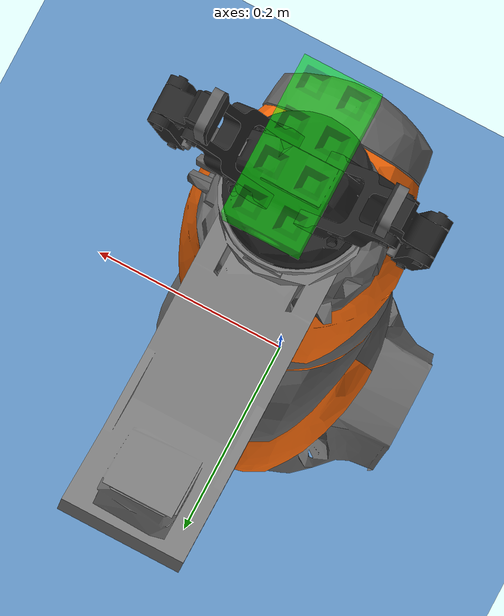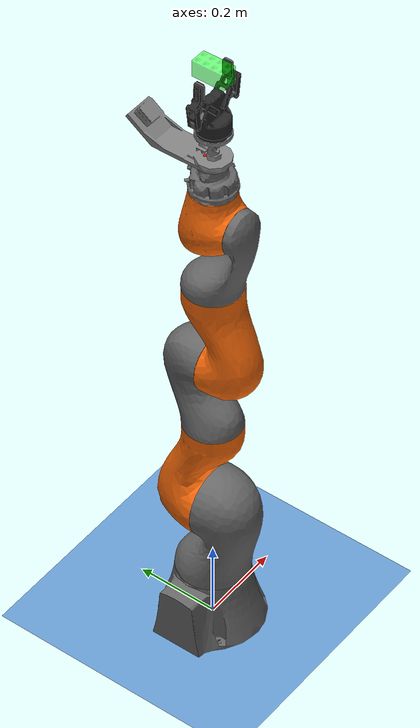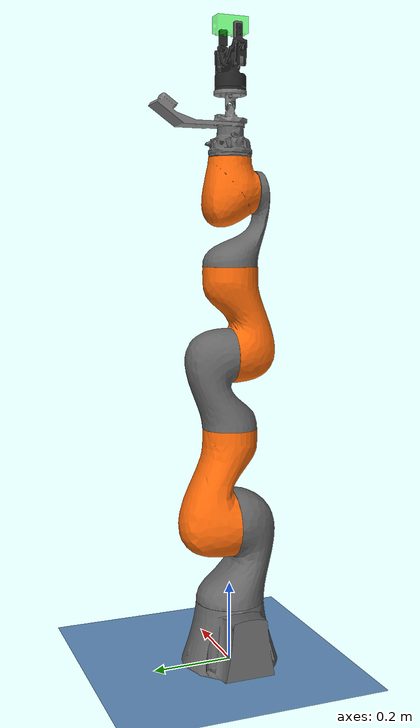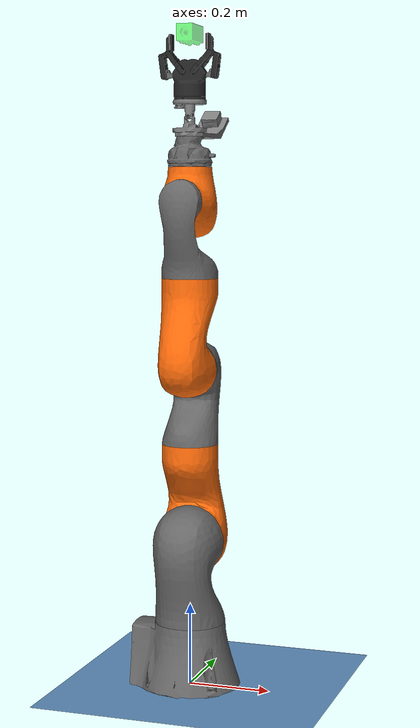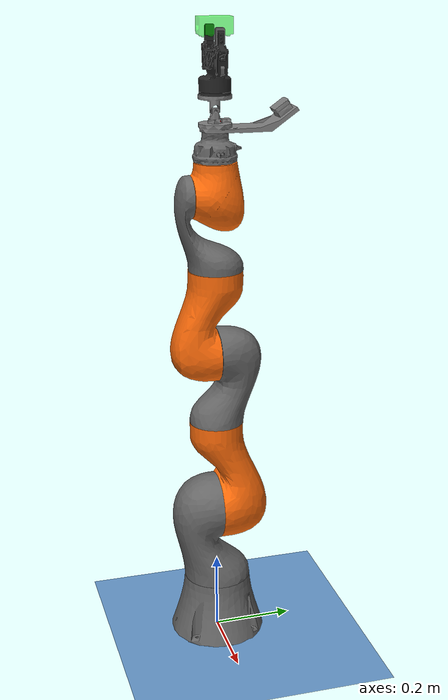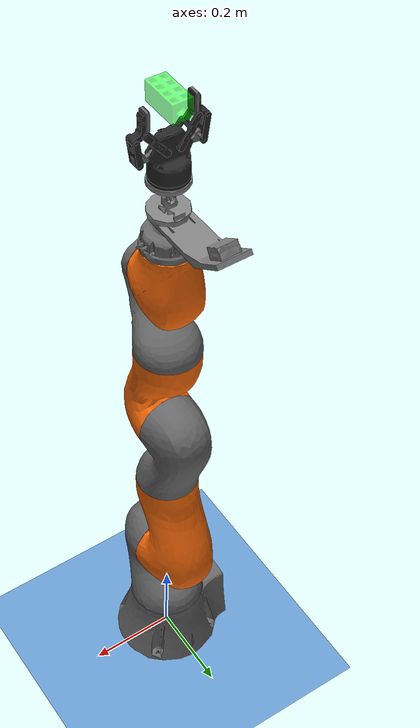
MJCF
<mujoco model="robocrane_mjx">

  <compiler
  autolimits="true"
  angle="radian"
  />

<option
  timestep="0.001"
  gravity="0 0 -9.81"
  integrator="implicitfast"
  >
  <flag multiccd="disable"/>
</option>

  <statistic meansize="0.03" extent="0.3" center="0.3 0 0" />
  <default>
    <default class="/" />
    <default class="lab/" />
    <default class="lab/iiwa/" />
    <default class="lab/iiwa/cardan_joint/">
      <default class="lab/iiwa/cardan_joint/visual">
        <geom type="mesh" contype="0" conaffinity="0" group="2" />
      </default>
      <default class="lab/iiwa/cardan_joint/collision">
        <geom type="mesh" group="3" />
      </default>
    </default>
    <default class="lab/iiwa/cardan_joint/ur_gripper/2f85">
      <mesh scale="0.001 0.001 0.001" />
      <joint axis="1 0 0" />
      <general biastype="affine" />
      <default class="lab/iiwa/cardan_joint/ur_gripper/visual2">
        <geom type="mesh" contype="0" conaffinity="0" group="2" material="lab/iiwa/cardan_joint/ur_gripper/gray2" />
      </default>
      <default class="lab/iiwa/cardan_joint/ur_gripper/driver">
        <joint solreflimit="0.005 1" solimplimit="0.95 0.99 0.001" range="0 0.8" armature="0.005" damping="0.1" />
      </default>
      <default class="lab/iiwa/cardan_joint/ur_gripper/follower">
        <joint pos="0 -0.018 0.0065" solreflimit="0.005 1" solimplimit="0.95 0.99 0.001" range="-0.8727 0.8727" />
      </default>
      <default class="lab/iiwa/cardan_joint/ur_gripper/spring_link">
        <joint stiffness="0.05" range="-0.2967 0.8" springref="2.62" damping="0.00125" />
      </default>
      <default class="lab/iiwa/cardan_joint/ur_gripper/coupler">
        <joint solreflimit="0.005 1" solimplimit="0.95 0.99 0.001" range="-1.57 0" />
      </default>
      <default class="lab/iiwa/cardan_joint/ur_gripper/collision2">
        <geom type="box" condim="3" group="3" rgba="1 0.4235 0.03922 1" />
        <default class="lab/iiwa/cardan_joint/ur_gripper/pad_box1">
          <geom type="box" priority="1" size="0.011 0.004 0.009375" rgba="0.55 0.55 0.55 1" friction="0.7" mass="0" solref="0.004 1" solimp="0.95 0.99 0.001" pos="0 -0.0026 0.02813" />
        </default>
        <default class="lab/iiwa/cardan_joint/ur_gripper/pad_box2">
          <geom type="box" priority="1" size="0.011 0.004 0.009375" rgba="0.45 0.45 0.45 1" friction="0.6" mass="0" solref="0.004 1" solimp="0.95 0.99 0.001" pos="0 -0.0026 0.009375" />
        </default>
      </default>
    </default>
    <default class="wall/" />
    <default class="block_green/"/>
    <default class="block_orange/" />
    <default class="block_blue/" />
  </default>
  <asset>
    <texture name="lab//unnamed_texture_0" type="skybox" builtin="gradient" rgb1="0.6 0.8 1" rgb2="0.2 0.2 0.2" width="512" height="3072" />
    <texture name="lab/groundplane" type="2d" builtin="checker" rgb1="0.5 0.7 0.9" rgb2="0.3 0.5 0.7" mark="edge" markrgb="0.9 0.9 0.9" width="300" height="300" />
    <material name="lab/groundplane" class="lab/" texture="lab/groundplane" texrepeat="5 5" texuniform="true" reflectance="0.4" />
    <mesh maxhullvert="10" name="lab/iiwa/link_0" class="lab/iiwa/" file="base_link-5923539fbd7857ea716ff1bc3ef3f05fb44fefdd.stl" />
    <mesh maxhullvert="10" name="lab/iiwa/link_1" class="lab/iiwa/" file="link_1-ac6245160be1a43d652c2a2c3b73a58d1dfa90e4.stl" />
    <mesh maxhullvert="10" name="lab/iiwa/link_2" class="lab/iiwa/" file="link_2-825b1e76e8e7c70ae4c8d112f62701a01555dcf5.stl" />
    <mesh maxhullvert="10" name="lab/iiwa/link_3" class="lab/iiwa/" file="link_3-b55302ba767376e20501905d1e5ea3ae6b70998d.stl" />
    <mesh maxhullvert="10" name="lab/iiwa/link_4" class="lab/iiwa/" file="link_4-05ccd5ecc00b0d36b59bc264f7cec382d4c4122b.stl" />
    <mesh maxhullvert="10" name="lab/iiwa/link_5" class="lab/iiwa/" file="link_5-fcf25b48909184c134560cfa93731b85bf4698c9.stl" />
    <mesh maxhullvert="10" name="lab/iiwa/link_6" class="lab/iiwa/" file="link_6-955785181a16fa937663f7db1c496e9605b820a9.stl" />
    <mesh maxhullvert="10" name="lab/iiwa/link_7" class="lab/iiwa/" file="link_7-85a5c154edcbf21b01a9031cc0a7c9861a4e0fed.stl" />
    <mesh maxhullvert="10" name="lab/iiwa/cardan_joint/cj_cam_mount" class="lab/iiwa/cardan_joint/" file="cj_top_V4_coll-6f3e36287b54bdd5ad2518d59e4cc865785780c3.obj" />
    <mesh maxhullvert="10" name="lab/iiwa/cardan_joint/cj_middle" class="lab/iiwa/cardan_joint/" file="cj_middle-1309231b4c0a493c2b65609bbb64275813619889.obj" />
    <mesh maxhullvert="10" name="lab/iiwa/cardan_joint/cj_bot" class="lab/iiwa/cardan_joint/" file="cj_asm_half-947726d4ba6162bd80d70f31db90d4ae33ecd56c.obj" />
    <mesh maxhullvert="10" name="lab/iiwa/cardan_joint/cj_cam_mount_vis" class="lab/iiwa/cardan_joint/" file="cj_top_V4-76978c996657efe89708b43b67fb00f5f31b4bc6.obj" />
    <mesh maxhullvert="10" name="lab/iiwa/cardan_joint/cj_middle_vis" class="lab/iiwa/cardan_joint/" file="cj_middle_vis-e08f93e997c48b5995634064a579731fca49cfe9.obj" />
    <mesh maxhullvert="10" name="lab/iiwa/cardan_joint/cj_bot_vis" class="lab/iiwa/cardan_joint/" file="cj_asm_half_vis-10e9d2e22a7610ed98d9ae3b58b68799d0da53a0.obj" />
    <mesh maxhullvert="10" name="lab/iiwa/cardan_joint/ur_gripper/base_mount" class="lab/iiwa/cardan_joint/ur_gripper/2f85" file="base_mount-22e57178defe77afb6bdd333bfae16607f1eb3dd.stl" />
    <mesh maxhullvert="10" name="lab/iiwa/cardan_joint/ur_gripper/base" class="lab/iiwa/cardan_joint/ur_gripper/2f85" file="base-e5dacbcc3971bfdb549ff8c7d38ea873ca7f2933.stl" />
    <mesh maxhullvert="10" name="lab/iiwa/cardan_joint/ur_gripper/driver" class="lab/iiwa/cardan_joint/ur_gripper/2f85" file="driver-97efa43184c575b31ff1f3980641896f51492762.stl" />
    <mesh maxhullvert="10" name="lab/iiwa/cardan_joint/ur_gripper/coupler" class="lab/iiwa/cardan_joint/ur_gripper/2f85" file="coupler-0a4240dc94992944cca6ec9e270ff1658fa86c55.stl" />
    <mesh maxhullvert="10" name="lab/iiwa/cardan_joint/ur_gripper/follower" class="lab/iiwa/cardan_joint/ur_gripper/2f85" file="follower-39e4b8048f1395ee38cb45b37b5fec0e6f2aaec9.stl" />
    <mesh maxhullvert="10" name="lab/iiwa/cardan_joint/ur_gripper/pad" class="lab/iiwa/cardan_joint/ur_gripper/2f85" file="pad-e6a633b2c81740b1f783ec4c6e695c8cc570f09d.stl" />
    <mesh maxhullvert="10" name="lab/iiwa/cardan_joint/ur_gripper/silicone_pad" class="lab/iiwa/cardan_joint/ur_gripper/2f85" file="silicone_pad-c284384f3ca6dcdc24d6188a5d1a2d4c42c412ac.stl" />
    <mesh maxhullvert="10" name="lab/iiwa/cardan_joint/ur_gripper/spring_link" class="lab/iiwa/cardan_joint/ur_gripper/2f85" file="spring_link-8f50234325193b84e9f86b7a63a24560a389c9bf.stl" />
    <material name="lab/iiwa/cardan_joint/ur_gripper/black2" class="lab/iiwa/cardan_joint/ur_gripper/2f85" rgba="0.149 0.149 0.149 1" />
    <material name="lab/iiwa/cardan_joint/ur_gripper/wood2" class="lab/iiwa/cardan_joint/ur_gripper/2f85" rgba="0.56 0.37 0.29 1" />
    <material name="lab/iiwa/cardan_joint/ur_gripper/gray2" class="lab/iiwa/cardan_joint/ur_gripper/2f85" rgba="0.4 0.4 0.4 1" />
    <material name="wall/wood" class="wall/" specular="0.1" shininess="0.2" reflectance="0.05" rgba="0.55 0.27 0.07 1" />
    <material name="wall/aluminum" class="wall/" specular="0.8" shininess="0.9" reflectance="0.6" rgba="0.8 0.8 0.8 1" />

    <mesh maxhullvert="10" name="LegoBlock" file="LegoBlock.stl" />

  </asset>

  <worldbody>
    <body name="ground" mocap="false" pos="0 0 0">
      <site name="ground_site_attach" class="/" />
      <body name="lab/">
        <light name="lab//unnamed_light_0" class="lab/" directional="true" pos="0 0 1.5" dir="0 0 -1" />
        <geom name="lab/floor" class="lab/" type="plane" size="0 0 0.05" material="lab/groundplane" />
        <site name="lab/ground_attach" class="lab/" group="0" rgba="1 0 0 1" size="0.01" pos="0 0 0" />
        <body pos="0 0 0" name="lab/iiwa/">
          <body name="lab/iiwa/base" pos="0 0 0">
            <camera name="lab/iiwa/robotview" class="lab/iiwa/" mode="fixed" pos="1 0 0.4" quat="0.653 0.271 0.271 0.653" />
            <inertial pos="0 0 0" mass="0" diaginertia="0 0 0" />
            <geom name="lab/iiwa//unnamed_geom_0" class="lab/iiwa/" type="mesh" contype="0" conaffinity="0" group="1" rgba="0.4 0.4 0.4 1" density="0" mesh="lab/iiwa/link_0" />
            <geom name="lab/iiwa/col_sockel" class="lab/iiwa/" type="sphere" contype="0" conaffinity="0" group="3" size="0.12" rgba="1 0 0 1" density="0" pos="-0.01 0 0.1" />
            <body name="lab/iiwa/iiwa_link_1" pos="0 0 0.1575">
              <inertial pos="0 -0.01439 0.1025" quat="1 0 0 0" mass="6.495" diaginertia="0.06908 0.07111 0.02006" />
              <joint name="lab/iiwa/joint_1" class="lab/iiwa/" pos="0 0 0" axis="0 0 1" limited="true" range="-2.967 2.967" />
              <geom name="lab/iiwa//unnamed_geom_2" class="lab/iiwa/" type="mesh" contype="0" conaffinity="0" group="1" rgba="0.4 0.4 0.4 1" density="0" pos="0 0 -0.005" mesh="lab/iiwa/link_1" />
              <geom name="lab/iiwa/col_joint1" class="lab/iiwa/" type="capsule" contype="1" conaffinity="1" group="3" size="0.075" rgba="0.4 0.4 0.4 1" density="0" fromto="0 0 0 0 -0.05 0.2025" quat="0 0 0 1" />
              <body name="lab/iiwa/iiwa_link_2" pos="0 0 0.2025" quat="0 0 0.7071 0.7071">
                <inertial pos="1.2e-05 0.06472 0.004804" quat="1 0 0 0" mass="8.807" diaginertia="0.08247 0.01641 0.08735" />
                <joint name="lab/iiwa/joint_2" class="lab/iiwa/" pos="0 0 0" axis="0 0 1" limited="true" range="-2.094 2.094" />
                <geom name="lab/iiwa//unnamed_geom_4" class="lab/iiwa/" type="mesh" contype="0" conaffinity="0" group="1" rgba="1 0.4235 0.03922 1" density="0" pos="0 0 -0.013" quat="0 0 0 1" mesh="lab/iiwa/link_2" />
                <geom name="lab/iiwa/col_joint2" class="lab/iiwa/" type="capsule" contype="1" conaffinity="1" group="3" size="0.075" rgba="1 0.4235 0.03922 1" density="0" fromto="0 0 0.0513 0 0.2375 0" quat="0 0 0 1" />
                <body name="lab/iiwa/iiwa_link_3" pos="0 0.2375 0" quat="0 0 0.7071 0.7071">
                  <inertial pos="-0.000208 0.01601 0.08728" quat="1 0 0 0" mass="2.8" diaginertia="0.02302 0.02287 0.04545" />
                  <joint name="lab/iiwa/joint_3" class="lab/iiwa/" pos="0 0 0" axis="0 0 1" limited="true" range="-2.967 2.967" />
                  <geom name="lab/iiwa//unnamed_geom_6" class="lab/iiwa/" type="mesh" contype="0" conaffinity="0" group="1" rgba="0.4 0.4 0.4 1" density="0" pos="0 0 -0.005" mesh="lab/iiwa/link_3" />
                  <geom name="lab/iiwa/col_joint3" class="lab/iiwa/" type="capsule" contype="1" conaffinity="1" group="3" size="0.07" rgba="0.4 0.4 0.4 1" density="0" fromto="0 0 0 0 0.05 0.1825" quat="0 0 0 1" />
                  <body name="lab/iiwa/iiwa_link_4" pos="0 0 0.1825" quat="0.7071 0.7071 0 0">
                    <inertial pos="-0.000203 0.09864 0.01148" quat="1 0 0 0" mass="5.283" diaginertia="0.04728 0.009647 0.04665" />
                    <joint name="lab/iiwa/joint_4" class="lab/iiwa/" pos="0 0 0" axis="0 0 1" limited="true" range="-2.094 2.094" />
                    <geom name="lab/iiwa//unnamed_geom_8" class="lab/iiwa/" type="mesh" contype="0" conaffinity="0" group="1" rgba="1 0.4235 0.03922 1" density="0" pos="0 0 -0.011" mesh="lab/iiwa/link_4" />
                    <geom name="lab/iiwa/col_joint4" class="lab/iiwa/" type="capsule" contype="1" conaffinity="1" group="3" size="0.07" rgba="1 0.4235 0.03922 1" density="0" fromto="0 0 0.04 0 0.2175 0" quat="0 0 0 1" />
                    <body name="lab/iiwa/iiwa_link_5" pos="0 0.2175 0" quat="0 0 0.7071 0.7071">
                      <inertial pos="5.7e-05 0.01447 0.06294" mass="1.889" diaginertia="0.01384 0.01169 0.005719" />
                      <joint name="lab/iiwa/joint_5" class="lab/iiwa/" pos="0 0 0" axis="0 0 1" limited="true" range="-2.967 2.967" />
                      <geom name="lab/iiwa//unnamed_geom_10" class="lab/iiwa/" type="mesh" contype="0" conaffinity="0" group="1" rgba="0.4 0.4 0.4 1" density="0" pos="0 0 -0.005" quat="0 0 0 1" mesh="lab/iiwa/link_5" />
                      <geom name="lab/iiwa/col_joint5" class="lab/iiwa/" type="capsule" contype="1" conaffinity="1" group="3" size="0.07" rgba="0.4 0.4 0.4 1" density="0" fromto="0 0 0 0 0.03 0.1825" quat="0 0 0 1" />
                      <body name="lab/iiwa/iiwa_link_6" pos="0 0 0.1825" quat="0.7071 0.7071 0 0">
                        <inertial pos="0.000363 0.01698 -0.01973" quat="1 0 0 0" mass="2.32" diaginertia="0.007328 0.004776 0.006068" />
                        <joint name="lab/iiwa/joint_6" class="lab/iiwa/" pos="0 0 0" axis="0 0 1" limited="true" range="-2.094 2.094" />
                        <geom name="lab/iiwa//unnamed_geom_12" class="lab/iiwa/" type="mesh" contype="0" conaffinity="0" group="1" rgba="1 0.4235 0.03922 1" density="0" pos="0 0 -0.061" quat="0 0 0 1" mesh="lab/iiwa/link_6" />
                        <geom name="lab/iiwa/col_joint67" class="lab/iiwa/" type="capsule" contype="1" conaffinity="1" group="3" size="0.06" rgba="1 0.4235 0.03922 1" density="0" fromto="0 0 0 0 0.081 0" quat="0 0 0 1" />
                        <body name="lab/iiwa/iiwa_link_7" pos="0 0.081 0" quat="0 0 0.7071 0.7071">
                          <inertial pos="0.001904 -9.3e-05 0.01886" quat="1 0 0 0" mass="0.863" diaginertia="0.000884 0.000888 0.001105" />
                          <joint name="lab/iiwa/joint_7" class="lab/iiwa/" pos="0 0 0" axis="0 0 1" limited="true" range="-3.054 3.054" />
                          <geom name="lab/iiwa//unnamed_geom_14" class="lab/iiwa/" type="mesh" contype="0" conaffinity="0" group="1" rgba="0.4 0.4 0.4 1" density="0" mesh="lab/iiwa/link_7" />
                          <site name="lab/iiwa/gripper_attachment" class="lab/iiwa/" group="0" rgba="1 0 0 1" size="0.01" pos="0 0 0.071" />
                          <body pos="0 0 0.071" name="lab/iiwa/cardan_joint/">
                            <body name="lab/iiwa/cardan_joint/cj_top" pos="0 0 0" quat="0.5 0.5 -0.5 -0.5">
                              <inertial pos="0.0135 -0 0.02238" quat="1 0 0 0" mass="0.5" diaginertia="0.000124 0.000378 0.000425" />
                              <geom name="lab/iiwa/cardan_joint//unnamed_geom_0" class="lab/iiwa/cardan_joint/visual" contype="0" conaffinity="0" group="2" quat="0.7071 0 0 0.7071" mesh="lab/iiwa/cardan_joint/cj_cam_mount_vis" />
                              <geom name="lab/iiwa/cardan_joint//unnamed_geom_1" class="lab/iiwa/cardan_joint/collision" contype="0" quat="0.7071 0 0 0.7071" mesh="lab/iiwa/cardan_joint/cj_cam_mount" />
                              <site name="lab/iiwa/cardan_joint/imu1_site" class="lab/iiwa/cardan_joint/" type="sphere" rgba="1 0 0 1" size="0.004" pos="-0.0138 0.02 0.01" quat="0.5 0.5 -0.5 0.5" />
                              <camera name="lab/iiwa/cardan_joint/eye_in_hand" class="lab/iiwa/cardan_joint/" mode="fixed" fovy="75" pos="-0.17 0.04 0" quat="0.6272 0.6272 0.3265 0.3265" />
                              <site name="lab/iiwa/cardan_joint/camera_site" class="lab/iiwa/cardan_joint/" type="sphere" rgba="1 0 0 1" size="0.004" pos="-0.17 0.04 0" quat="0.6272 0.6272 0.3265 0.3265" />
                              <body name="lab/iiwa/cardan_joint/cj_middle" pos="0 0.048 0" quat="0.7071 -0.7071 0 0">
                                <inertial pos="0 0 0" quat="1 0 0 0" mass="0.016" diaginertia="1e-06 1e-06 1e-06" />
                                <joint name="lab/iiwa/cardan_joint/joint_cj1" class="lab/iiwa/cardan_joint/" pos="0 0 0" axis="-1 0 0" limited="true" range="-1 1" damping="0.005" />
                                <geom name="lab/iiwa/cardan_joint//unnamed_geom_2" class="lab/iiwa/cardan_joint/visual" contype="0" conaffinity="0" group="2" quat="0.7071 0.7071 0 0" mesh="lab/iiwa/cardan_joint/cj_middle_vis" />
                                <geom name="lab/iiwa/cardan_joint//unnamed_geom_3" class="lab/iiwa/cardan_joint/collision" contype="0" conaffinity="0" quat="0.7071 0.7071 0 0" mesh="lab/iiwa/cardan_joint/cj_middle" />
                                <body name="lab/iiwa/cardan_joint/cj_bot" pos="0 0 0.028" quat="0.7071 0 0 -0.7071">
                                  <inertial pos="0 0 0.05" quat="1 0 0 0" mass="1" diaginertia="0.0008 0.0008 0.001" />
                                  <joint name="lab/iiwa/cardan_joint/joint_cj2" class="lab/iiwa/cardan_joint/" pos="0 0 -0.028" axis="-1 0 0" limited="true" range="-1 1" damping="0.005" />
                                  <geom name="lab/iiwa/cardan_joint//unnamed_geom_4" class="lab/iiwa/cardan_joint/visual" contype="0" conaffinity="0" group="2" quat="0 1 0 0" mesh="lab/iiwa/cardan_joint/cj_bot_vis" />
                                  <geom name="lab/iiwa/cardan_joint//unnamed_geom_5" class="lab/iiwa/cardan_joint/collision" contype="0" conaffinity="0" quat="0 1 0 0" mesh="lab/iiwa/cardan_joint/cj_bot" />
                                  <site name="lab/iiwa/cardan_joint/imu2_site" class="lab/iiwa/cardan_joint/" type="sphere" rgba="0 1 0 1" size="0.002" pos="0.0138 0.0124 0" quat="0.7071 0 0 -0.7071" />
                                  <site name="lab/iiwa/cardan_joint/tool_attach" class="lab/iiwa/cardan_joint/" type="sphere" rgba="0 0 1 1" size="0.004" pos="0 0 0.01" quat="0.707 0 0 0.707" />
                                  <body pos="0 0 0.01" quat="0.707 0 0 0.707" name="lab/iiwa/cardan_joint/ur_gripper/">
                                    <body name="lab/iiwa/cardan_joint/ur_gripper/base_mount" childclass="lab/iiwa/cardan_joint/ur_gripper/2f85" pos="0 0 0">
                                      <inertial pos="0 0 0" quat="1 0 0 0" mass="0.0001" diaginertia="1e-06 1e-06 1e-06" />
                                      <geom name="lab/iiwa/cardan_joint/ur_gripper//unnamed_geom_0" class="lab/iiwa/cardan_joint/ur_gripper/visual2" material="lab/iiwa/cardan_joint/ur_gripper/black2" mesh="lab/iiwa/cardan_joint/ur_gripper/base_mount" />
                                      <body name="lab/iiwa/cardan_joint/ur_gripper/base" pos="0 0 0.0038">
                                        <body name="lab/iiwa/cardan_joint/ur_gripper/gripping_point" pos="0 0 0.13">

                                          <body name="block_green" euler="0 0 -1.57" pos="0 0 0.02">
                                            <geom name="block_green_geom" type="mesh" mesh="LegoBlock" rgba="0 1 0 0.5" pos="0 0 0.02" euler="-1.57 0 0" condim="4"/>
                                            <inertial pos="0 0 0" mass="0.20" diaginertia="0.00023 9.2e-05 0.00023"/>
                                          </body>

                                        </body>
                                        <inertial pos="0 -2.704e-05 0.03547" quat="1 -0.001528 0 0" mass="0.7774" diaginertia="0.0002603 0.0002254 0.0001527" />
                                        <geom name="lab/iiwa/cardan_joint/ur_gripper//unnamed_geom_2" class="lab/iiwa/cardan_joint/ur_gripper/visual2" material="lab/iiwa/cardan_joint/ur_gripper/black2" mesh="lab/iiwa/cardan_joint/ur_gripper/base" />
                                        <geom name="lab/iiwa/cardan_joint/ur_gripper/col_base" type="box" contype="1" conaffinity="1" group="3" size="0.0125 0.03 0.05" rgba="1 0.4235 0.03922 1" pos="0 0 0.038" />
                                        <site name="lab/iiwa/cardan_joint/ur_gripper/pinch" type="sphere" group="8" material="lab/iiwa/cardan_joint/ur_gripper/wood2" size="0.005" pos="0 0 0.145" />
                                        <body name="lab/iiwa/cardan_joint/ur_gripper/right_driver" pos="0 0.0306 0.0549">
                                          <inertial pos="2.969e-12 0.01775 0.001073" quat="0.6813 0.732 0 0" mass="0.008996" diaginertia="1.724e-06 1.609e-06 3.22e-07" />
                                          <geom name="lab/iiwa/cardan_joint/ur_gripper//unnamed_geom_4" class="lab/iiwa/cardan_joint/ur_gripper/visual2" material="lab/iiwa/cardan_joint/ur_gripper/gray2" mesh="lab/iiwa/cardan_joint/ur_gripper/driver" />
                                          <body name="lab/iiwa/cardan_joint/ur_gripper/right_coupler" pos="0 0.0315 -0.0041">
                                            <inertial pos="0 0.003012 0.02322" quat="0.7056 -0.04559 0.04559 0.7056" mass="0.0141" diaginertia="4.162e-06 3.522e-06 8.881e-07" />
                                            <geom name="lab/iiwa/cardan_joint/ur_gripper//unnamed_geom_5" class="lab/iiwa/cardan_joint/ur_gripper/visual2" material="lab/iiwa/cardan_joint/ur_gripper/black2" mesh="lab/iiwa/cardan_joint/ur_gripper/coupler" />
                                            <geom name="lab/iiwa/cardan_joint/ur_gripper/col_right_coupler" type="box" contype="1" conaffinity="1" group="3" size="0.005139 0.01275 0.02689" rgba="1 0 0 1" pos="0 0.003012 0.02322" quat="0.7056 -0.04559 0.04559 0.7056" />
                                          </body>
                                        </body>
                                        <body name="lab/iiwa/cardan_joint/ur_gripper/right_spring_link" pos="0 0.0132 0.0609">
                                          <inertial pos="-8.65e-09 0.01816 0.02127" quat="0.6634 -0.2447 0.2447 0.6634" mass="0.02216" diaginertia="8.969e-06 6.717e-06 2.639e-06" />
                                          <geom name="lab/iiwa/cardan_joint/ur_gripper//unnamed_geom_7" class="lab/iiwa/cardan_joint/ur_gripper/visual2" material="lab/iiwa/cardan_joint/ur_gripper/black2" mesh="lab/iiwa/cardan_joint/ur_gripper/spring_link" />
                                          <body name="lab/iiwa/cardan_joint/ur_gripper/right_follower" pos="0 0.055 0.0375">
                                            <inertial pos="0 -0.01105 0.01248" quat="1 0.1664 0 0" mass="0.01252" diaginertia="2.674e-06 2.456e-06 6.02e-07" />
                                            <geom name="lab/iiwa/cardan_joint/ur_gripper//unnamed_geom_8" class="lab/iiwa/cardan_joint/ur_gripper/visual2" material="lab/iiwa/cardan_joint/ur_gripper/black2" mesh="lab/iiwa/cardan_joint/ur_gripper/follower" />
                                            <body name="lab/iiwa/cardan_joint/ur_gripper/right_pad" pos="0 -0.0189 0.01352">
                                              <geom name="lab/iiwa/cardan_joint/ur_gripper/right_pad1" class="lab/iiwa/cardan_joint/ur_gripper/pad_box1" contype="1" conaffinity="1" />
                                              <geom name="lab/iiwa/cardan_joint/ur_gripper/right_pad2" class="lab/iiwa/cardan_joint/ur_gripper/pad_box2" />
                                              <inertial pos="0 -0.0025 0.0185" quat="0.7071 0 0 0.7071" mass="0.0035" diaginertia="4.74e-07 3.646e-07 1.24e-07" />
                                              <geom name="lab/iiwa/cardan_joint/ur_gripper//unnamed_geom_11" class="lab/iiwa/cardan_joint/ur_gripper/visual2" mesh="lab/iiwa/cardan_joint/ur_gripper/pad" />
                                              <body name="lab/iiwa/cardan_joint/ur_gripper/right_silicone_pad">
                                                <geom name="lab/iiwa/cardan_joint/ur_gripper//unnamed_geom_12" class="lab/iiwa/cardan_joint/ur_gripper/visual2" material="lab/iiwa/cardan_joint/ur_gripper/black2" mesh="lab/iiwa/cardan_joint/ur_gripper/silicone_pad" />
                                              </body>
                                            </body>
                                          </body>
                                        </body>
                                        <body name="lab/iiwa/cardan_joint/ur_gripper/left_driver" pos="0 -0.0306 0.0549" quat="0 0 0 1">
                                          <inertial pos="0 0.01775 0.001073" quat="0.6813 0.732 0 0" mass="0.008996" diaginertia="1.724e-06 1.609e-06 3.22e-07" />
                                          <geom name="lab/iiwa/cardan_joint/ur_gripper//unnamed_geom_13" class="lab/iiwa/cardan_joint/ur_gripper/visual2" material="lab/iiwa/cardan_joint/ur_gripper/gray2" mesh="lab/iiwa/cardan_joint/ur_gripper/driver" />
                                          <body name="lab/iiwa/cardan_joint/ur_gripper/left_coupler" pos="0 0.0315 -0.0041">
                                            <inertial pos="0 0.003012 0.02322" quat="0.7056 -0.04559 0.04559 0.7056" mass="0.0141" diaginertia="4.162e-06 3.522e-06 8.881e-07" />
                                            <geom name="lab/iiwa/cardan_joint/ur_gripper//unnamed_geom_14" class="lab/iiwa/cardan_joint/ur_gripper/visual2" material="lab/iiwa/cardan_joint/ur_gripper/black2" mesh="lab/iiwa/cardan_joint/ur_gripper/coupler" />
                                            <geom name="lab/iiwa/cardan_joint/ur_gripper/col_left_coupler" type="box" contype="1" conaffinity="1" group="3" size="0.005139 0.01275 0.02689" rgba="1 0 0 1" pos="0 0.003012 0.02322" quat="0.7056 -0.04559 0.04559 0.7056" />
                                          </body>
                                        </body>
                                        <body name="lab/iiwa/cardan_joint/ur_gripper/left_spring_link" pos="0 -0.0132 0.0609" quat="0 0 0 1">
                                          <inertial pos="-8.65e-09 0.01816 0.02127" quat="0.6634 -0.2447 0.2447 0.6634" mass="0.02216" diaginertia="8.969e-06 6.717e-06 2.639e-06" />
                                          <geom name="lab/iiwa/cardan_joint/ur_gripper//unnamed_geom_16" class="lab/iiwa/cardan_joint/ur_gripper/visual2" material="lab/iiwa/cardan_joint/ur_gripper/black2" mesh="lab/iiwa/cardan_joint/ur_gripper/spring_link" />
                                          <body name="lab/iiwa/cardan_joint/ur_gripper/left_follower" pos="0 0.055 0.0375">
                                            <inertial pos="0 -0.01105 0.01248" quat="1 0.1664 0 0" mass="0.01252" diaginertia="2.674e-06 2.456e-06 6.02e-07" />
                                            <geom name="lab/iiwa/cardan_joint/ur_gripper//unnamed_geom_17" class="lab/iiwa/cardan_joint/ur_gripper/visual2" material="lab/iiwa/cardan_joint/ur_gripper/black2" mesh="lab/iiwa/cardan_joint/ur_gripper/follower" />
                                            <body name="lab/iiwa/cardan_joint/ur_gripper/left_pad" pos="0 -0.0189 0.01352">
                                              <geom name="lab/iiwa/cardan_joint/ur_gripper/left_pad1" class="lab/iiwa/cardan_joint/ur_gripper/pad_box1" contype="1" conaffinity="1" />
                                              <geom name="lab/iiwa/cardan_joint/ur_gripper/left_pad2" class="lab/iiwa/cardan_joint/ur_gripper/pad_box2" />
                                              <inertial pos="0 -0.0025 0.0185" quat="1 0 0 1" mass="0.0035" diaginertia="4.74e-07 3.646e-07 1.24e-07" />
                                              <geom name="lab/iiwa/cardan_joint/ur_gripper//unnamed_geom_20" class="lab/iiwa/cardan_joint/ur_gripper/visual2" mesh="lab/iiwa/cardan_joint/ur_gripper/pad" />
                                              <body name="lab/iiwa/cardan_joint/ur_gripper/left_silicone_pad">
                                                <geom name="lab/iiwa/cardan_joint/ur_gripper//unnamed_geom_21" class="lab/iiwa/cardan_joint/ur_gripper/visual2" material="lab/iiwa/cardan_joint/ur_gripper/black2" mesh="lab/iiwa/cardan_joint/ur_gripper/silicone_pad" />
                                              </body>
                                            </body>
                                          </body>
                                        </body>
                                      </body>
                                    </body>
                                  </body>
                                </body>
                              </body>
                            </body>
                          </body>
                        </body>
                      </body>
                    </body>
                  </body>
                </body>
              </body>
            </body>
          </body>
        </body>
      </body>
    </body>

  </worldbody>
  <contact>
    <exclude name="lab/iiwa/cardan_joint/ur_gripper//unnamed_contact_0" body1="lab/iiwa/cardan_joint/ur_gripper/base" body2="lab/iiwa/cardan_joint/ur_gripper/left_driver" />
    <exclude name="lab/iiwa/cardan_joint/ur_gripper//unnamed_contact_1" body1="lab/iiwa/cardan_joint/ur_gripper/base" body2="lab/iiwa/cardan_joint/ur_gripper/right_driver" />
    <exclude name="lab/iiwa/cardan_joint/ur_gripper//unnamed_contact_2" body1="lab/iiwa/cardan_joint/ur_gripper/base" body2="lab/iiwa/cardan_joint/ur_gripper/left_spring_link" />
    <exclude name="lab/iiwa/cardan_joint/ur_gripper//unnamed_contact_3" body1="lab/iiwa/cardan_joint/ur_gripper/base" body2="lab/iiwa/cardan_joint/ur_gripper/right_spring_link" />
    <exclude name="lab/iiwa/cardan_joint/ur_gripper//unnamed_contact_4" body1="lab/iiwa/cardan_joint/ur_gripper/right_coupler" body2="lab/iiwa/cardan_joint/ur_gripper/right_follower" />
    <exclude name="lab/iiwa/cardan_joint/ur_gripper//unnamed_contact_5" body1="lab/iiwa/cardan_joint/ur_gripper/left_coupler" body2="lab/iiwa/cardan_joint/ur_gripper/left_follower" />
  </contact>

  <actuator>
    <motor name="lab/iiwa/torq_j1" class="lab/iiwa/" ctrllimited="true" ctrlrange="-176 176" joint="lab/iiwa/joint_1" />
    <motor name="lab/iiwa/torq_j2" class="lab/iiwa/" ctrllimited="true" ctrlrange="-176 176" joint="lab/iiwa/joint_2" />
    <motor name="lab/iiwa/torq_j3" class="lab/iiwa/" ctrllimited="true" ctrlrange="-110 110" joint="lab/iiwa/joint_3" />
    <motor name="lab/iiwa/torq_j4" class="lab/iiwa/" ctrllimited="true" ctrlrange="-110 110" joint="lab/iiwa/joint_4" />
    <motor name="lab/iiwa/torq_j5" class="lab/iiwa/" ctrllimited="true" ctrlrange="-110 110" joint="lab/iiwa/joint_5" />
    <motor name="lab/iiwa/torq_j6" class="lab/iiwa/" ctrllimited="true" ctrlrange="-40 40" joint="lab/iiwa/joint_6" />
    <motor name="lab/iiwa/torq_j7" class="lab/iiwa/" ctrllimited="true" ctrlrange="-40 40" joint="lab/iiwa/joint_7" />
  </actuator>

  <sensor>
    <accelerometer name="lab/iiwa/cardan_joint/acc1" site="lab/iiwa/cardan_joint/imu1_site" />
    <gyro name="lab/iiwa/cardan_joint/gyro1" site="lab/iiwa/cardan_joint/imu1_site" />
    <accelerometer name="lab/iiwa/cardan_joint/acc2" site="lab/iiwa/cardan_joint/imu2_site" />
    <gyro name="lab/iiwa/cardan_joint/gyro2" site="lab/iiwa/cardan_joint/imu2_site" />
  </sensor>

  <contact>
  <exclude body1="lab/iiwa/cardan_joint/cj_top"
           body2="lab/iiwa/cardan_joint/cj_bot" />
  </contact>
</mujoco>
